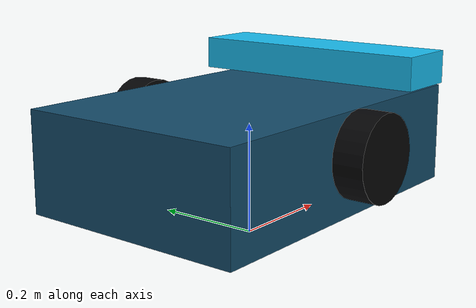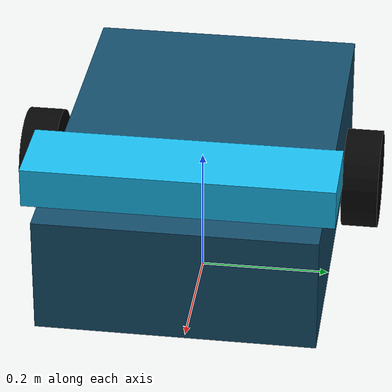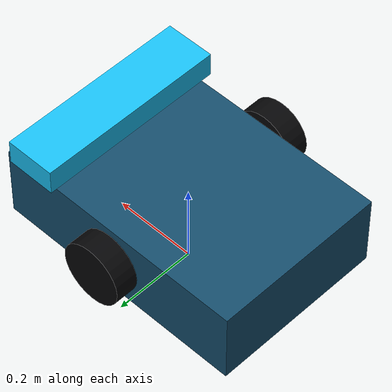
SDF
<?xml version="1.0"?>
<sdf version="1.9">
  <model name="rms_agv">
    <pose>0 0 0.16 0 0 0</pose>

    <link name="base_link">
      <inertial>
        <mass>8.0</mass>
        <inertia>
          <ixx>0.16</ixx>
          <ixy>0</ixy>
          <ixz>0</ixz>
          <iyy>0.22</iyy>
          <iyz>0</iyz>
          <izz>0.28</izz>
        </inertia>
      </inertial>
      <collision name="base_collision">
        <geometry>
          <box>
            <size>0.62 0.42 0.18</size>
          </box>
        </geometry>
      </collision>
      <visual name="base_visual">
        <geometry>
          <box>
            <size>0.62 0.42 0.18</size>
          </box>
        </geometry>
        <material>
          <ambient>0.08 0.18 0.24 1</ambient>
          <diffuse>0.08 0.30 0.42 1</diffuse>
        </material>
      </visual>
      <visual name="sensor_bar">
        <pose>0.22 0 0.13 0 0 0</pose>
        <geometry>
          <box>
            <size>0.12 0.46 0.06</size>
          </box>
        </geometry>
        <material>
          <ambient>0.10 0.75 0.95 1</ambient>
          <diffuse>0.10 0.75 0.95 1</diffuse>
        </material>
      </visual>
    </link>

    <link name="left_wheel">
      <pose>0 0.25 0.02 1.570796 0 0</pose>
      <inertial>
        <mass>0.35</mass>
        <inertia>
          <ixx>0.001</ixx>
          <ixy>0</ixy>
          <ixz>0</ixz>
          <iyy>0.001</iyy>
          <iyz>0</iyz>
          <izz>0.001</izz>
        </inertia>
      </inertial>
      <collision name="collision">
        <geometry>
          <cylinder>
            <radius>0.075</radius>
            <length>0.055</length>
          </cylinder>
        </geometry>
      </collision>
      <visual name="visual">
        <geometry>
          <cylinder>
            <radius>0.075</radius>
            <length>0.055</length>
          </cylinder>
        </geometry>
        <material>
          <ambient>0.02 0.02 0.025 1</ambient>
          <diffuse>0.02 0.02 0.025 1</diffuse>
        </material>
      </visual>
    </link>

    <link name="right_wheel">
      <pose>0 -0.25 0.02 1.570796 0 0</pose>
      <inertial>
        <mass>0.35</mass>
        <inertia>
          <ixx>0.001</ixx>
          <ixy>0</ixy>
          <ixz>0</ixz>
          <iyy>0.001</iyy>
          <iyz>0</iyz>
          <izz>0.001</izz>
        </inertia>
      </inertial>
      <collision name="collision">
        <geometry>
          <cylinder>
            <radius>0.075</radius>
            <length>0.055</length>
          </cylinder>
        </geometry>
      </collision>
      <visual name="visual">
        <geometry>
          <cylinder>
            <radius>0.075</radius>
            <length>0.055</length>
          </cylinder>
        </geometry>
        <material>
          <ambient>0.02 0.02 0.025 1</ambient>
          <diffuse>0.02 0.02 0.025 1</diffuse>
        </material>
      </visual>
    </link>

    <joint name="left_wheel_joint" type="revolute">
      <parent>base_link</parent>
      <child>left_wheel</child>
      <axis>
        <xyz>0 0 1</xyz>
        <limit>
          <lower>-1e16</lower>
          <upper>1e16</upper>
        </limit>
      </axis>
    </joint>

    <joint name="right_wheel_joint" type="revolute">
      <parent>base_link</parent>
      <child>right_wheel</child>
      <axis>
        <xyz>0 0 1</xyz>
        <limit>
          <lower>-1e16</lower>
          <upper>1e16</upper>
        </limit>
      </axis>
    </joint>

    <plugin filename="gz-sim-diff-drive-system" name="gz::sim::systems::DiffDrive">
      <left_joint>left_wheel_joint</left_joint>
      <right_joint>right_wheel_joint</right_joint>
      <wheel_separation>0.50</wheel_separation>
      <wheel_radius>0.075</wheel_radius>
      <odom_publish_frequency>30</odom_publish_frequency>
      <max_linear_acceleration>0.8</max_linear_acceleration>
      <min_linear_acceleration>-0.8</min_linear_acceleration>
      <max_angular_acceleration>1.8</max_angular_acceleration>
      <min_angular_acceleration>-1.8</min_angular_acceleration>
    </plugin>
  </model>
</sdf>
